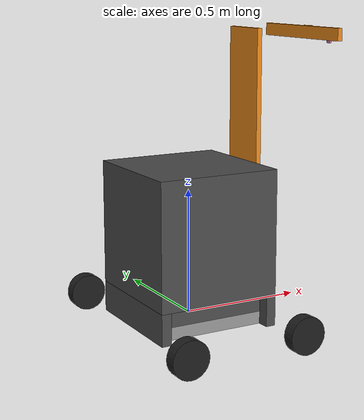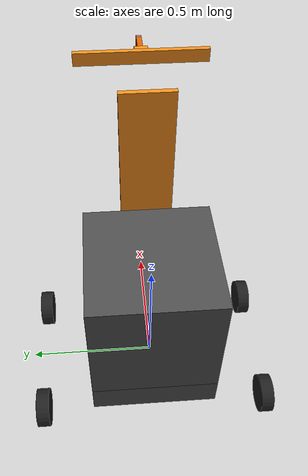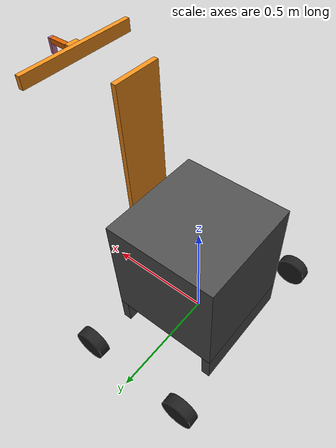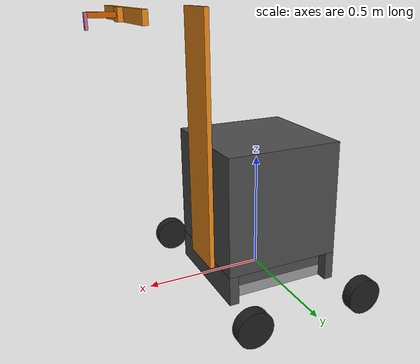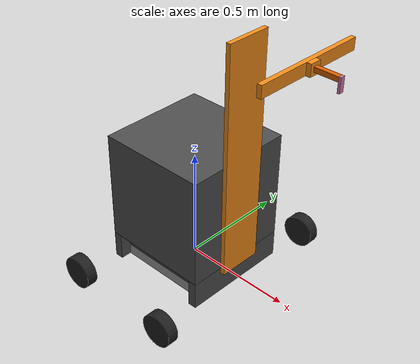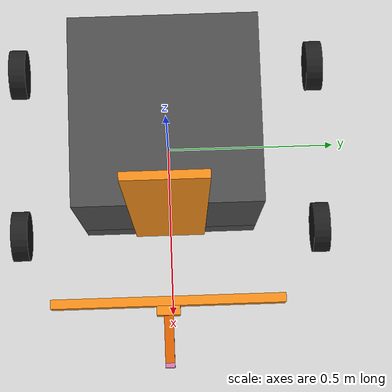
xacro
<?xml version="1.0"?>

<robot name="mobile_robot" xmlns:xacro="https://www.ros.org/wiki/xacro" >
    <xacro:include filename="$(find do_description)/urdf/fourwheeler.urdf.xacro" />
    <xacro:fourwheeler_base_macro/>
    <!--mobile base 50 cm x 50 cm square-->

    <xacro:include filename="$(find do_description)/urdf/operate_device.urdf.xacro" />
    <xacro:operate_device_macro parent="link_support" robotname="mobile_robot">
      <xacro:property name="location_x" value="0.25" />
      <xacro:property name="location_y" value="0" />
      <xacro:property name="location_z" value="0.55" />
    </xacro:operate_device_macro>
</robot>

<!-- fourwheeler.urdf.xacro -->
<robot xmlns:xacro="https://www.ros.org/wiki/xacro" >
    <xacro:property name="PI" value="3.1415926535897931"/>
    <xacro:property name="chassis_x" value="0.42" />
    <xacro:property name="chassis_y" value="0.4" />
    <xacro:property name="chassis_z" value="0.05" />
    <xacro:property name="chassis_m" value="28" />

    <xacro:property name="wheel_r" value="0.075"/>
    <xacro:property name="wheel_l" value="0.05"/>
    <xacro:property name="wheel_m" value="0.5"/>

    <xacro:property name="wheelbase" value="0.25" /> <!--base on the wheel diameter and chassis_x-->
    <xacro:property name="track" value="0.45" /> <!--base on the wheel width and chassis_y-->

    <xacro:property name="base_x" value="0.42" />
    <xacro:property name="base_y" value="0.4" />
    <xacro:property name="base_z" value="0.075" />
    <xacro:property name="base_m" value="2" />

    <xacro:property name="bumper_x" value="0.04" />
    <xacro:property name="bumper_y" value="0.5" />
    <xacro:property name="bumper_z" value="0.125" />
    <xacro:property name="bumper_m" value="1" />

    <xacro:property name="support_x" value="0.5" />
    <xacro:property name="support_y" value="0.5" />
    <xacro:property name="support_z" value="0.5" />
    <xacro:property name="support_m" value="6" />

    <!-- main triwheeler link -->
    <xacro:macro name="fourwheeler_base_macro">
      <!-- Used for fixing robot to Gazebo 'base_link'-->
      <link name="world"/>
      <joint name="joint_world_chassis" type="floating">
        <parent link="world"/>
        <child link="link_chassis"/>
      </joint>

      <link name="link_chassis">
        <visual>
          <origin xyz="0 0 0" rpy="0 0 0" />
          <geometry>
            <box size="${chassis_x} ${chassis_y} ${chassis_z}"/>
          </geometry>
        </visual>
        <collision>
          <origin xyz="0 0 0" rpy="0 0 0" />
          <geometry>
            <box size="${chassis_x} ${chassis_y} ${chassis_z}"/>
          </geometry>
        </collision>
        <inertial>
          <mass value="${chassis_m}"/>
          <origin rpy="0 0 0" xyz="0 0 0"/>
          <inertia ixx="${1/12*chassis_m*(chassis_y*chassis_y+chassis_z*chassis_z)}" ixy="0" ixz="0" iyy="${1/12*chassis_m*(chassis_z*chassis_z+chassis_x*chassis_x)}" iyz="0" izz="${1/12*chassis_m*(chassis_x*chassis_x+chassis_y*chassis_y)}"/>
        </inertial>
      </link>

      <!--left rear wheel-->
      <joint name="joint_chassis_lrwheel" type="continuous">
        <origin xyz="-${wheelbase/2} ${track/2} 0" rpy="0 0 0" />
        <parent link="link_chassis"/>
        <child link="link_lrwheel"/>
        <axis xyz="0 1 0" rpy="0 0 0" />
      </joint>
      <link name="link_lrwheel">
        <visual>
          <origin rpy="${PI/2}  0 0" xyz="-${wheelbase/2} ${track/2} 0"/>
          <geometry>
            <cylinder length="${wheel_l}" radius="${wheel_r}"/>
          </geometry>
        </visual>
        <collision>
          <origin rpy="${PI/2}  0 0" xyz="-${wheelbase/2} ${track/2} 0" />
          <geometry>
            <cylinder length="${wheel_l}" radius="${wheel_r}"/>
          </geometry>
        </collision>
        <inertial>
          <mass value="${wheel_m}"/>
          <origin rpy="${PI/2} 0 0" xyz="-${wheelbase/2} ${track/2} 0"/>
          <inertia ixx="${1/12*wheel_m*(3*wheel_r*wheel_r+wheel_l*wheel_l)}" ixy="0" ixz="0" iyy="${1/12*wheel_m*(3*wheel_r*wheel_r+wheel_l*wheel_l)}" iyz="0" izz="${1/2*wheel_m*wheel_r*wheel_r}"/>
        </inertial>
      </link>

      <!--right rear wheel-->
      <joint name="joint_chassis_rrwheel" type="continuous">
        <origin xyz="-${wheelbase/2} -${track/2} 0" rpy="0 0 0" />
        <parent link="link_chassis"/>
        <child link="link_rrwheel"/>
        <axis xyz="0 1 0" rpy="0 0 0" />
      </joint>
      <link name="link_rrwheel">
        <visual>
          <origin rpy="${PI/2} 0 0" xyz="-${wheelbase/2} -${track/2} 0" />
          <geometry>
            <cylinder length="${wheel_l}" radius="${wheel_r}"/>
          </geometry>
        </visual>
        <collision>
          <origin rpy="${PI/2} 0 0" xyz="-${wheelbase/2} -${track/2} 0"  />
          <geometry>
            <cylinder length="${wheel_l}" radius="${wheel_r}"/>
          </geometry>
        </collision>
        <inertial>
          <mass value="${wheel_m}"/>
          <origin rpy="${PI/2} 0 0" xyz="-${wheelbase/2} -${track/2} 0" />
          <inertia ixx="${1/12*wheel_m*(3*wheel_r*wheel_r+wheel_l*wheel_l)}" ixy="0" ixz="0" iyy="${1/12*wheel_m*(3*wheel_r*wheel_r+wheel_l*wheel_l)}" iyz="0" izz="${1/2*wheel_m*wheel_r*wheel_r}"/>
        </inertial>
      </link>

      <!--left front wheel-->
      <joint name="joint_chassis_lfwheel" type="continuous">
        <origin xyz="${wheelbase/2} ${track/2} 0" rpy="0 0 0" />
        <parent link="link_chassis"/>
        <child link="link_lfwheel"/>
        <axis xyz="0 1 0" rpy="0 0 0" />
      </joint>
      <link name="link_lfwheel">
        <visual>
          <origin rpy="${PI/2} 0 0" xyz="${wheelbase/2} ${track/2} 0"/>
          <geometry>
            <cylinder length="${wheel_l}" radius="${wheel_r}"/>
          </geometry>
        </visual>
        <collision>
          <origin rpy="${PI/2} 0 0" xyz="${wheelbase/2} ${track/2} 0"/>
          <geometry>
            <cylinder length="${wheel_l}" radius="${wheel_r}"/>
          </geometry>
        </collision>
        <inertial>
          <mass value="${wheel_m}"/>
          <origin rpy="${PI/2} 0 0" xyz="${wheelbase/2} ${track/2} 0"/>
          <inertia ixx="${1/12*wheel_m*(3*wheel_r*wheel_r+wheel_l*wheel_l)}" ixy="0" ixz="0" iyy="${1/12*wheel_m*(3*wheel_r*wheel_r+wheel_l*wheel_l)}" iyz="0" izz="${1/2*wheel_m*wheel_r*wheel_r}"/>
        </inertial>
      </link>

      <!--right front wheel-->
      <joint name="joint_chassis_rfwheel" type="continuous">
        <origin xyz="${wheelbase/2} -${track/2} 0" rpy="0 0 0" />
        <parent link="link_chassis"/>
        <child link="link_rfwheel"/>
        <axis xyz="0 1 0" rpy="0 0 0" />
      </joint>
      <link name="link_rfwheel">
        <visual>
          <origin rpy="${PI/2} 0 0" xyz="${wheelbase/2} -${track/2} 0" />
          <geometry>
            <cylinder length="${wheel_l}" radius="${wheel_r}"/>
          </geometry>
        </visual>
        <collision>
          <origin rpy="${PI/2} 0 0" xyz="${wheelbase/2} -${track/2} 0" />
          <geometry>
            <cylinder length="${wheel_l}" radius="${wheel_r}"/>
          </geometry>
        </collision>
        <inertial>
          <mass value="${wheel_m}"/>
          <origin rpy="${PI/2} 0 0" xyz="${wheelbase/2} -${track/2} 0" />
          <inertia ixx="${1/12*wheel_m*(3*wheel_r*wheel_r+wheel_l*wheel_l)}" ixy="0" ixz="0" iyy="${1/12*wheel_m*(3*wheel_r*wheel_r+wheel_l*wheel_l)}" iyz="0" izz="${1/2*wheel_m*wheel_r*wheel_r}"/>
        </inertial>
      </link>

      <!--upper base-->
      <joint name="joint_chassis_base" type="fixed">
        <origin xyz="0 0 ${chassis_z/2}" rpy="0 0 0"/>
        <parent link="link_chassis"/>
        <child link="link_base"/>
      </joint>

      <link name="link_base">
        <visual>
          <origin xyz="0 0 ${base_z/2}" rpy="0 0 0" />
          <geometry>
            <box size="${base_x} ${base_y} ${base_z}"/>
          </geometry>
        </visual>
        <collision>
          <origin xyz="0 0 ${base_z/2}" rpy="0 0 0" />
          <geometry>
            <box size="${base_x} ${base_y} ${base_z}"/>
          </geometry>
        </collision>
        <inertial>
          <mass value="${base_m}"/>
          <origin rpy="0 0 0" xyz="0 0 0"/>
          <inertia ixx="${1/12*base_m*(base_y*base_y+base_z*base_z)}" ixy="0" ixz="0" iyy="${1/12*base_m*(base_z*base_z+base_x*base_x)}" iyz="0" izz="${1/12*base_m*(base_x*base_x+base_y*base_y)}"/>
        </inertial>
      </link>

      <joint name="joint_base_support" type="fixed">
        <origin rpy="0 0 0" xyz="0 0 ${base_z}"/>
        <parent link="link_base"/>
        <child link="link_support"/>
      </joint>

      <link name="link_support">
        <visual>
          <origin xyz="0 0 ${support_z/2}" rpy="0 0 0" />
          <geometry>
            <box size="${support_x} ${support_y} ${support_z}"/>
          </geometry>
        </visual>
        <collision>
          <origin xyz="0 0 ${support_z/2}" rpy="0 0 0" />
          <geometry>
            <box size="${support_x} ${support_y} ${support_z}"/>
          </geometry>
        </collision>
        <inertial>
          <mass value="${support_m}"/>
          <origin rpy="0 0 0" xyz="0 0 0"/>
          <inertia ixx="${1/12*support_m*(support_y*support_y+support_z*support_z)}" ixy="0" ixz="0" iyy="${1/12*support_m*(support_z*support_z+support_x*support_x)}" iyz="0" izz="${1/12*support_m*(support_x*support_x+support_y*support_y)}"/>
        </inertial>
      </link>

      <!--bumper-->
      <joint name="joint_chassis_fbumper" type="fixed">
        <origin xyz="${chassis_x/2} 0 ${(chassis_z+base_z)/2-chassis_z/2}" rpy="0 0 0"/>
        <parent link="link_chassis"/>
        <child link="link_fbumper"/>
      </joint>

      <link name="link_fbumper">
        <visual>
          <origin xyz="${bumper_x/2} 0 0" rpy="0 0 0" />
          <geometry>
            <box size="${bumper_x} ${bumper_y} ${bumper_z}"/>
          </geometry>
        </visual>
        <collision>
          <origin xyz="${bumper_x/2} 0 0" rpy="0 0 0" />
          <geometry>
            <box size="${bumper_x} ${bumper_y} ${bumper_z}"/>
          </geometry>
        </collision>
        <inertial>
          <mass value="${bumper_m}"/>
          <origin rpy="0 0 0" xyz="0 0 0"/>
          <inertia ixx="${1/12*bumper_m*(bumper_y*bumper_y+bumper_z*bumper_z)}" ixy="0" ixz="0" iyy="${1/12*bumper_m*(bumper_z*bumper_z+bumper_x*bumper_x)}" iyz="0" izz="${1/12*bumper_m*(bumper_x*bumper_x+bumper_y*bumper_y)}"/>
        </inertial>
      </link>

      <joint name="joint_chassis_rbumper" type="fixed">
        <origin xyz="-${chassis_x/2} 0 ${(chassis_z+base_z)/2-chassis_z/2}" rpy="0 0 0"/>
        <parent link="link_chassis"/>
        <child link="link_rbumper"/>
      </joint>
      <link name="link_rbumper">
        <visual>
          <origin xyz="-${bumper_x/2} 0 0" rpy="0 0 0" />
          <geometry>
            <box size="${bumper_x} ${bumper_y} ${bumper_z}"/>
          </geometry>
        </visual>
        <collision>
          <origin xyz="-${bumper_x/2} 0 0" rpy="0 0 0" />
          <geometry>
            <box size="${bumper_x} ${bumper_y} ${bumper_z}"/>
          </geometry>
        </collision>
        <inertial>
          <mass value="${bumper_m}"/>
          <origin rpy="0 0 0" xyz="0 0 0"/>
          <inertia ixx="${1/12*bumper_m*(bumper_y*bumper_y+bumper_z*bumper_z)}" ixy="0" ixz="0" iyy="${1/12*bumper_m*(bumper_z*bumper_z+bumper_x*bumper_x)}" iyz="0" izz="${1/12*bumper_m*(bumper_x*bumper_x+bumper_y*bumper_y)}"/>
        </inertial>
      </link>

      <!--Gazebo-->
      <!-- skid steering controller -->
      <gazebo>
        <plugin name="skid_steer_drive_controller" filename="libgazebo_ros_skid_steer_drive.so">
          <updateRate>100.0</updateRate>
          <robotNamespace>/</robotNamespace>
          <leftFrontJoint>joint_chassis_lfwheel</leftFrontJoint>
          <rightFrontJoint>joint_chassis_rfwheel</rightFrontJoint>
          <leftRearJoint>joint_chassis_lrwheel</leftRearJoint>
          <rightRearJoint>joint_chassis_rrwheel</rightRearJoint>
          <wheelSeparation>${wheelbase}</wheelSeparation>
          <wheelDiameter>2*${wheel_r}</wheelDiameter>
          <robotBaseFrame>link_chassis</robotBaseFrame>
          <odometryFrame>odom</odometryFrame>
          <torque>30</torque>
          <topicName>cmd_vel</topicName>
          <odometryTopic>odom</odometryTopic>
          <broadcastTF>true</broadcastTF>
          <commandTopic>cmd_vel</commandTopic>
          <covariance_x>0.0001</covariance_x>
          <covariance_y>0.0000</covariance_y>
          <covariance_yaw>0.01</covariance_yaw>
        </plugin>
      </gazebo>

      <gazebo reference="link_chassis">
        <material>Gazebo/Grey</material>
      </gazebo>

      <gazebo reference="link_support">
        <material>Gazebo/DarkGrey</material>
      </gazebo>

      <gazebo reference="link_base">
        <material>Gazebo/DarkGrey</material>
      </gazebo>

      <gazebo reference="link_fbumper">
        <material>Gazebo/DarkGrey</material>
      </gazebo>

      <gazebo reference="link_rbumper">
        <material>Gazebo/DarkGrey</material>
      </gazebo>

      <gazebo reference="link_lrwheel">
        <mu1>0.1</mu1>
        <mu2>0.1</mu2>
        <material>Gazebo/Black</material>
      </gazebo>

      <gazebo reference="link_rrwheel">
        <mu1>0.1</mu1>
        <mu2>0.1</mu2>
        <material>Gazebo/Black</material>
      </gazebo>

      <gazebo reference="link_lfwheel">
        <mu1>0.1</mu1>
        <mu2>0.1</mu2>
        <material>Gazebo/Black</material>
      </gazebo>

      <gazebo reference="link_rfwheel">
        <mu1>0.1</mu1>
        <mu2>0.1</mu2>
        <material>Gazebo/Black</material>
      </gazebo>

    </xacro:macro>
</robot>

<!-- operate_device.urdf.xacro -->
<robot xmlns:xacro="https://www.ros.org/wiki/xacro" >
    <xacro:property name="PI" value="3.1415926535897931"/>
    <xacro:property name="location_x" value="0.25" />
    <xacro:property name="location_y" value="0" />
    <xacro:property name="location_z" value="0.5" />

    <xacro:property name="bar_x" value="0.02" />
    <xacro:property name="bar_y" value="0.2" />
    <xacro:property name="bar_z" value="1.05" />
    <xacro:property name="bar_m" value="0.5" />

    <xacro:property name="vslider_x" value="0.02" />
    <xacro:property name="vslider_y" value="0.5" />
    <xacro:property name="vslider_z" value="0.05" />
    <xacro:property name="vslider_m" value="0.2" />

    <xacro:property name="hslider_x" value="0.02" />
    <xacro:property name="hslider_y" value="0.05" />
    <xacro:property name="hslider_z" value="0.05" />
    <xacro:property name="hslider_m" value="0.1" />

    <xacro:property name="finger_x" value="0.1" />
    <xacro:property name="finger_y" value="0.02" />
    <xacro:property name="finger_z" value="0.02" />
    <xacro:property name="finger_m" value="0.01" />

    <xacro:property name="tip_x" value="0.01" />
    <xacro:property name="tip_y" value="0.02" />
    <xacro:property name="tip_z" value="0.06" />
    <xacro:property name="tip_m" value="0.01" />

    <xacro:macro name="operate_device_macro" params="parent robotname">
      <joint name="joint_support_bar" type="fixed">
        <origin xyz="${location_x} ${location_y} ${location_z}" rpy="0 0 0"/>
        <parent link="${parent}"/>
        <child link="link_bar"/>
      </joint>

      <link name="link_bar">
        <visual>
          <origin xyz="${bar_x/2} 0 0" rpy="0 0 0" />
          <geometry>
            <box size="${bar_x} ${bar_y} ${bar_z}"/>
          </geometry>
        </visual>
        <collision>
          <origin xyz="${bar_x/2} 0 0" rpy="0 0 0" />
          <geometry>
            <box size="${bar_x} ${bar_y} ${bar_z}"/>
          </geometry>
        </collision>
        <inertial>
          <mass value="${bar_m}"/>
          <origin xyz="${bar_x/2} 0 0" rpy="0 0 0"/>
          <inertia ixx="${1/12*bar_m*(bar_y*bar_y+bar_z*bar_z)}" ixy="0" ixz="0" iyy="${1/12*bar_m*(bar_z*bar_z+bar_x*bar_x)}" iyz="0" izz="${1/12*bar_m*(bar_x*bar_x+bar_y*bar_y)}"/>
        </inertial>
      </link>

      <joint name="joint_bar_vslider" type="prismatic">
        <origin xyz="${bar_x} 0 -${bar_z/2}" rpy="0 0 0"/>
        <parent link="link_bar"/>
        <child link="link_vslider"/>
        <axis xyz="0 0 1"/>
        <limit upper="${bar_z-0.05}" lower="0.05" effort="1000.0" velocity="0.1"/>
        <dynamics damping="0" friction="2.0"/>
      </joint>
      <link name="link_vslider">
        <visual>
          <origin xyz="${vslider_x/2 + location_x} ${location_y} ${location_z}" rpy="0 0 0" />
          <geometry>
            <box size="${vslider_x} ${vslider_y} ${vslider_z}"/>
          </geometry>
        </visual>
        <collision>
          <origin xyz="${vslider_x/2 + location_x} ${location_y} ${location_z}" rpy="0 0 0" />
          <geometry>
            <box size="${vslider_x} ${vslider_y} ${vslider_z}"/>
          </geometry>
        </collision>
        <inertial>
          <mass value="${vslider_m}"/>
          <origin xyz="${vslider_x/2} 0 0" rpy="0 0 0"/>
          <inertia ixx="${1/12*vslider_m*(vslider_y*vslider_y+vslider_z*vslider_z)}" ixy="0" ixz="0" iyy="${1/12*vslider_m*(vslider_z*vslider_z+vslider_x*vslider_x)}" iyz="0" izz="${1/12*vslider_m*(vslider_x*vslider_x+vslider_y*vslider_y)}"/>
        </inertial>
      </link>

      <joint name="joint_slider_slider" type="prismatic">
        <origin xyz="${vslider_x} 0 0" rpy="0 0 0"/>
        <parent link="link_vslider"/>
        <child link="link_hslider"/>
        <axis xyz="0 1 0"/>
        <limit upper="${vslider_y/2}" lower="-${vslider_y/2}" effort="1000.0" velocity="0.1"/>
        <dynamics damping="0" friction="2.0"/>
      </joint>
      <link name="link_hslider">
        <visual>
          <origin xyz="${hslider_x/2 + location_x} ${location_y} ${location_z}" rpy="0 0 0" />
          <geometry>
            <box size="${hslider_x} ${hslider_y} ${hslider_z}"/>
          </geometry>
        </visual>
        <collision>
          <origin xyz="${hslider_x/2 + location_x} ${location_y} ${location_z}" rpy="0 0 0" />
          <geometry>
            <box size="${hslider_x} ${hslider_y} ${hslider_z}"/>
          </geometry>
        </collision>
        <inertial>
          <mass value="${hslider_m}"/>
          <origin xyz="${hslider_x/2} 0 0" rpy="0 0 0"/>
          <inertia ixx="${1/12*hslider_m*(hslider_y*hslider_y+hslider_z*hslider_z)}" ixy="0" ixz="0" iyy="${1/12*hslider_m*(hslider_z*hslider_z+hslider_x*hslider_x)}" iyz="0" izz="${1/12*hslider_m*(hslider_x*hslider_x+hslider_y*hslider_y)}"/>
        </inertial>
      </link>

      <joint name="joint_slider_finger" type="fixed">
        <origin xyz="${hslider_x} 0 0" rpy="0 0 0"/>
        <parent link="link_hslider"/>
        <child link="link_finger"/>
      </joint>

      <link name="link_finger">
        <visual>
          <origin xyz="${finger_x/2 + location_x} ${location_y} ${location_z}" rpy="0 0 0" />
          <geometry>
            <box size="${finger_x} ${finger_y} ${finger_z}"/>
          </geometry>
        </visual>
        <collision>
          <origin xyz="${finger_x/2 + location_x} ${location_y} ${location_z}" rpy="0 0 0" />
          <geometry>
            <box size="${finger_x} ${finger_y} ${finger_z}"/>
          </geometry>
        </collision>
        <inertial>
          <mass value="${finger_m}"/>
          <origin xyz="${finger_x/2} 0 0" rpy="0 0 0" />
          <inertia ixx="${1/12*finger_m*(finger_y*finger_y+finger_z*finger_z)}" ixy="0" ixz="0" iyy="${1/12*finger_m*(finger_z*finger_z+finger_x*finger_x)}" iyz="0" izz="${1/12*finger_m*(finger_x*finger_x+finger_y*finger_y)}"/>
        </inertial>
      </link>

      <joint name="joint_finger_tip" type="fixed">
        <origin xyz="${finger_x} 0 0" rpy="0 0 0"/>
        <parent link="link_finger"/>
        <child link="link_tip"/>
      </joint>
      <link name="link_tip">
        <visual>
          <origin xyz="${tip_x/2 + location_x} ${location_y} ${location_z-0.02}" rpy="0 0 0" />
          <geometry>
            <box size="${tip_x} ${tip_y} ${tip_z}"/>
          </geometry>
        </visual>
        <collision>
          <origin xyz="${tip_x/2 + location_x} ${location_y} ${location_z-0.02}" rpy="0 0 0" />
          <geometry>
            <box size="${tip_x} ${tip_y} ${tip_z}"/>
          </geometry>
        </collision>
        <inertial>
          <mass value="${tip_m}"/>
          <origin xyz="${tip_x/2} 0 -0.02" rpy="0 0 0" />
          <inertia ixx="${1/12*tip_m*(tip_y*tip_y+tip_z*tip_z)}" ixy="0" ixz="0" iyy="${1/12*tip_m*(tip_z*tip_z+tip_x*tip_x)}" iyz="0" izz="${1/12*tip_m*(tip_x*tip_x+tip_y*tip_y)}"/>
        </inertial>
      </link>

      <transmission name="vertical_trans">
        <type>transmission_interface/SimpleTransmission</type>
        <joint name="joint_bar_vslider">
          <hardwareInterface>hardware_interface/EffortJointInterface</hardwareInterface>
        </joint>
        <actuator name="vertical_motor">
          <hardwareInterface>hardware_interface/EffortJointInterface</hardwareInterface>
          <mechanicalReduction>1</mechanicalReduction>
        </actuator>
      </transmission>

      <transmission name="horizontal_trans">
        <type>transmission_interface/SimpleTransmission</type>
        <joint name="joint_slider_slider">
          <hardwareInterface>hardware_interface/EffortJointInterface</hardwareInterface>
        </joint>
        <actuator name="horizontal_motor">
          <hardwareInterface>hardware_interface/EffortJointInterface</hardwareInterface>
          <mechanicalReduction>1</mechanicalReduction>
        </actuator>
      </transmission>

      <gazebo reference="link_bar">
        <material>Gazebo/Orange</material>
      </gazebo>
      <gazebo reference="link_vslider">
        <material>Gazebo/Orange</material>
        <turnGravityOff>false</turnGravityOff>
      </gazebo>
      <gazebo reference="link_hslider">
        <material>Gazebo/Orange</material>
        <turnGravityOff>false</turnGravityOff>
      </gazebo>

      <gazebo>
        <plugin name="gazebo_ros_control" filename="libgazebo_ros_control.so">
          <robotNamespace>/${robotname}</robotNamespace>
          <robotSimType>gazebo_ros_control/DefaultRobotHWSim</robotSimType>
          <legacyModeNS>true</legacyModeNS>
        </plugin>
      </gazebo>

    </xacro:macro>
</robot>
